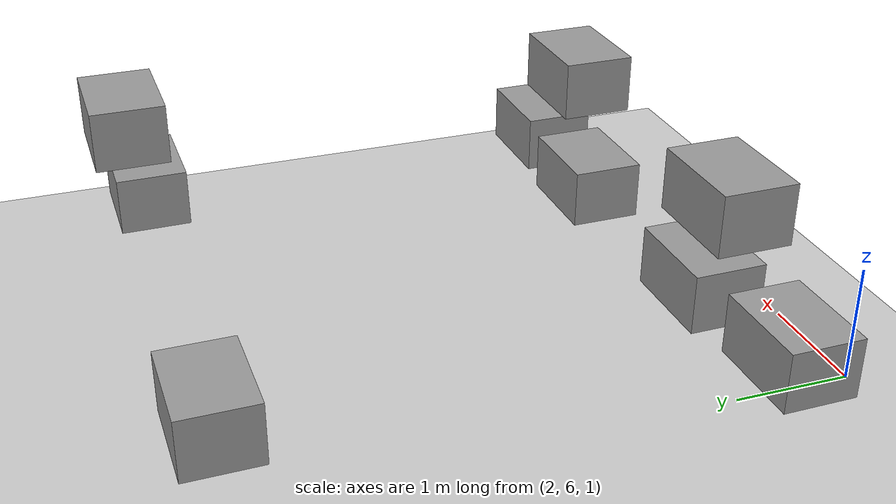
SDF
<sdf version="1.7">
 <world name="fei_lrs_world">
  <model name="ground_plane">
   <static>1</static>
   <link name="link">
    <collision name="collision">
     <geometry><plane><normal>0 0 1</normal><size>100 100</size></plane></geometry>
     <surface>
      <contact><collide_bitmask>65535</collide_bitmask></contact>
      <friction><ode><mu>100</mu><mu2>50</mu2></ode></friction>
     </surface>
    </collision>
    <visual name="visual">
     <cast_shadows>0</cast_shadows>
     <geometry><plane><normal>0 0 1</normal><size>100 100</size></plane></geometry>
     <material>
      <script><uri>file://media/materials/scripts/gazebo.material</uri><name>Gazebo/Grey</name></script>
     </material>
    </visual>
   </link>
  </model>
  <light name="sun" type="directional">
   <pose>0 0 10 0 -0 0</pose>
   <diffuse>0.8 0.8 0.8 1</diffuse>
   <specular>0.2 0.2 0.2 1</specular>
   <attenuation>
    <range>1000</range>
    <constant>0.9</constant>
    <linear>0.01</linear>
    <quadratic>0.001</quadratic>
   </attenuation>
   <direction>-0.5 0.1 -0.9</direction>
   <spot><inner_angle>0</inner_angle><outer_angle>0</outer_angle><falloff>0</falloff></spot>
  </light>
  <gravity>0 0 -9.8</gravity>
  <magnetic_field>6e-06 2.3e-05 -4.2e-05</magnetic_field>
  <atmosphere type="adiabatic"/>
  <physics name="default_physics" default="0" type="ode">
   <max_step_size>0.001</max_step_size>
   <real_time_factor>1</real_time_factor>
   <real_time_update_rate>1000</real_time_update_rate>
  </physics>
  <scene><ambient>0.4 0.4 0.4 1</ambient><background>0.7 0.7 0.7 1</background><shadows>1</shadows></scene>
  <spherical_coordinates>
   <surface_model>EARTH_WGS84</surface_model>
   <latitude_deg>0</latitude_deg>
   <longitude_deg>0</longitude_deg>
   <elevation>0</elevation>
   <heading_deg>0</heading_deg>
  </spherical_coordinates>
  <model name="unit_box_3">
   <pose>6.86895 6.62281 1.26752 -1.57079 -3e-06 0.010066</pose>
   <link name="link">
    <inertial>
     <mass>1</mass>
     <inertia>
      <ixx>0.166667</ixx>
      <ixy>0</ixy>
      <ixz>0</ixz>
      <iyy>0.166667</iyy>
      <iyz>0</iyz>
      <izz>0.166667</izz>
     </inertia>
    </inertial>
    <collision name="collision">
     <geometry><box><size>0.939394 0.555052 0.670683</size></box></geometry>
    </collision>
    <visual name="visual">
     <geometry><box><size>0.939394 0.555052 0.670683</size></box></geometry>
     <material>
      <script><name>Gazebo/Grey</name><uri>file://media/materials/scripts/gazebo.material</uri></script>
     </material>
    </visual>
   </link>
  </model>
  <model name="unit_box_3_clone">
   <pose>5.55389 6.68027 1.26752 -1.57079 0 0.010066</pose>
   <link name="link">
    <inertial>
     <mass>1</mass>
     <inertia>
      <ixx>0.166667</ixx>
      <ixy>0</ixy>
      <ixz>0</ixz>
      <iyy>0.166667</iyy>
      <iyz>0</iyz>
      <izz>0.166667</izz>
     </inertia>
    </inertial>
    <collision name="collision">
     <geometry><box><size>0.939395 0.555051 0.670682</size></box></geometry>
    </collision>
    <visual name="visual">
     <geometry><box><size>0.939395 0.555051 0.670682</size></box></geometry>
     <material>
      <script><name>Gazebo/Grey</name><uri>file://media/materials/scripts/gazebo.material</uri></script>
     </material>
    </visual>
   </link>
  </model>
  <model name="unit_box_3_clone_0">
   <pose>3.45427 6.53952 1.26752 -1.5708 7e-06 0.010066</pose>
   <link name="link">
    <inertial>
     <mass>1</mass>
     <inertia>
      <ixx>0.166667</ixx>
      <ixy>0</ixy>
      <ixz>0</ixz>
      <iyy>0.166667</iyy>
      <iyz>0</iyz>
      <izz>0.166667</izz>
     </inertia>
    </inertial>
    <collision name="collision">
     <geometry><box><size>0.939395 0.555051 0.670682</size></box></geometry>
    </collision>
    <visual name="visual">
     <geometry><box><size>0.939395 0.555051 0.670682</size></box></geometry>
     <material>
      <script><name>Gazebo/Grey</name><uri>file://media/materials/scripts/gazebo.material</uri></script>
     </material>
    </visual>
   </link>
  </model>
  <model name="unit_box_3_clone_1">
   <pose>2.20462 6.41014 1.26753 -1.5708 -0 0.010066</pose>
   <link name="link">
    <inertial>
     <mass>1</mass>
     <inertia>
      <ixx>0.166667</ixx>
      <ixy>0</ixy>
      <ixz>0</ixz>
      <iyy>0.166667</iyy>
      <iyz>0</iyz>
      <izz>0.166667</izz>
     </inertia>
    </inertial>
    <collision name="collision">
     <geometry><box><size>0.939395 0.555051 0.670682</size></box></geometry>
    </collision>
    <visual name="visual">
     <geometry><box><size>0.939395 0.555051 0.670682</size></box></geometry>
     <material>
      <script><name>Gazebo/Grey</name><uri>file://media/materials/scripts/gazebo.material</uri></script>
     </material>
    </visual>
   </link>
  </model>
  <model name="unit_box_3_clone_2">
   <pose>6.8358 10.9181 1.26752 -1.5708 -0 0.010066</pose>
   <link name="link">
    <inertial>
     <mass>1</mass>
     <inertia>
      <ixx>0.166667</ixx>
      <ixy>0</ixy>
      <ixz>0</ixz>
      <iyy>0.166667</iyy>
      <iyz>0</iyz>
      <izz>0.166667</izz>
     </inertia>
    </inertial>
    <collision name="collision">
     <geometry><box><size>0.939395 0.555051 0.670682</size></box></geometry>
    </collision>
    <visual name="visual">
     <geometry><box><size>0.939395 0.555051 0.670682</size></box></geometry>
     <material>
      <script><name>Gazebo/Grey</name><uri>file://media/materials/scripts/gazebo.material</uri></script>
     </material>
    </visual>
   </link>
  </model>
  <model name="unit_box_3_clone_3">
   <pose>2.90752 11.0142 1.26752 -1.5708 9e-06 0.010066</pose>
   <link name="link">
    <inertial>
     <mass>1</mass>
     <inertia>
      <ixx>0.166667</ixx>
      <ixy>0</ixy>
      <ixz>0</ixz>
      <iyy>0.166667</iyy>
      <iyz>0</iyz>
      <izz>0.166667</izz>
     </inertia>
    </inertial>
    <collision name="collision">
     <geometry><box><size>0.939395 0.555051 0.670682</size></box></geometry>
    </collision>
    <visual name="visual">
     <geometry><box><size>0.939395 0.555051 0.670682</size></box></geometry>
     <material>
      <script><name>Gazebo/Grey</name><uri>file://media/materials/scripts/gazebo.material</uri></script>
     </material>
    </visual>
   </link>
  </model>
  <model name="unit_box_3_clone_4">
   <pose>5.91253 6.66769 2.25752 -1.5708 5e-06 0.010066</pose>
   <link name="link">
    <inertial>
     <mass>1</mass>
     <inertia>
      <ixx>0.166667</ixx>
      <ixy>0</ixy>
      <ixz>0</ixz>
      <iyy>0.166667</iyy>
      <iyz>0</iyz>
      <izz>0.166667</izz>
     </inertia>
    </inertial>
    <collision name="collision">
     <geometry><box><size>0.939395 0.555051 0.670682</size></box></geometry>
    </collision>
    <visual name="visual">
     <geometry><box><size>0.939395 0.555051 0.670682</size></box></geometry>
     <material>
      <script><name>Gazebo/Grey</name><uri>file://media/materials/scripts/gazebo.material</uri></script>
     </material>
    </visual>
   </link>
  </model>
  <model name="unit_box_3_clone_4_clone">
   <pose>6.19992 11.122 2.25752 -1.57079 0 0.010066</pose>
   <link name="link">
    <inertial>
     <mass>1</mass>
     <inertia>
      <ixx>0.166667</ixx>
      <ixy>0</ixy>
      <ixz>0</ixz>
      <iyy>0.166667</iyy>
      <iyz>0</iyz>
      <izz>0.166667</izz>
     </inertia>
    </inertial>
    <collision name="collision">
     <geometry><box><size>0.939395 0.555051 0.670682</size></box></geometry>
    </collision>
    <visual name="visual">
     <geometry><box><size>0.939395 0.555051 0.670682</size></box></geometry>
     <material>
      <script><name>Gazebo/Grey</name><uri>file://media/materials/scripts/gazebo.material</uri></script>
     </material>
    </visual>
   </link>
  </model>
  <model name="unit_box_3_clone_4_clone_0">
   <pose>3.02906 6.63333 2.25752 -1.57079 -7e-06 0.010066</pose>
   <link name="link">
    <inertial>
     <mass>1</mass>
     <inertia>
      <ixx>0.166667</ixx>
      <ixy>0</ixy>
      <ixz>0</ixz>
      <iyy>0.166667</iyy>
      <iyz>0</iyz>
      <izz>0.166667</izz>
     </inertia>
    </inertial>
    <collision name="collision">
     <geometry><box><size>0.939395 0.555051 0.670682</size></box></geometry>
    </collision>
    <visual name="visual">
     <geometry><box><size>0.939395 0.555051 0.670682</size></box></geometry>
     <material>
      <script><name>Gazebo/Grey</name><uri>file://media/materials/scripts/gazebo.material</uri></script>
     </material>
    </visual>
   </link>
  </model>
  <audio><device>default</device></audio>
 </world>
</sdf>
